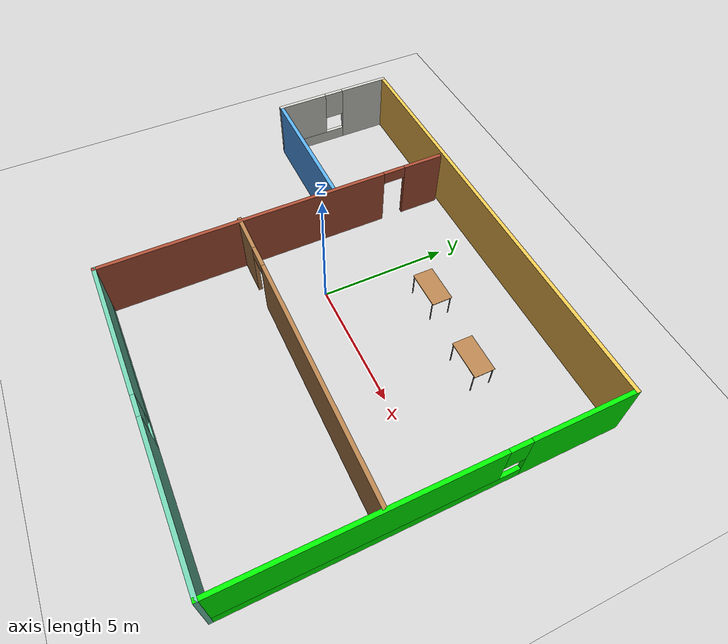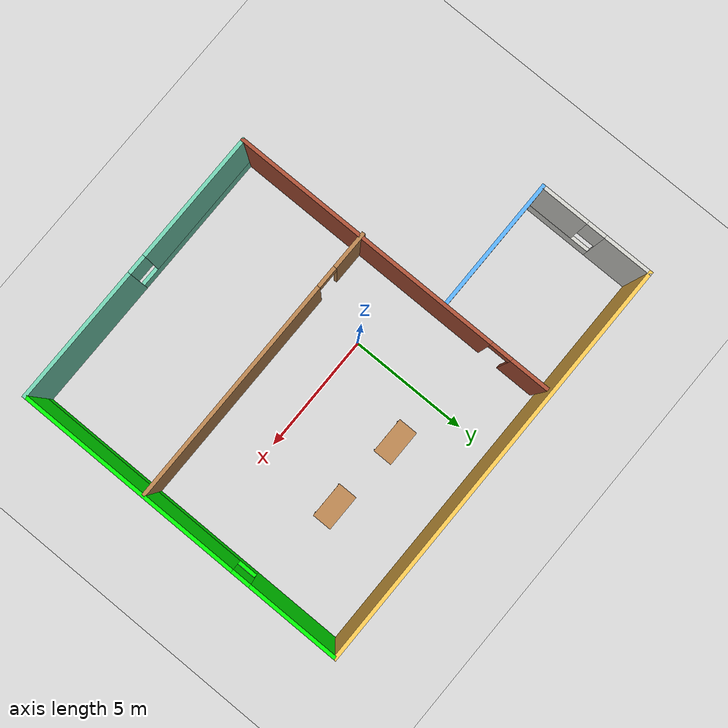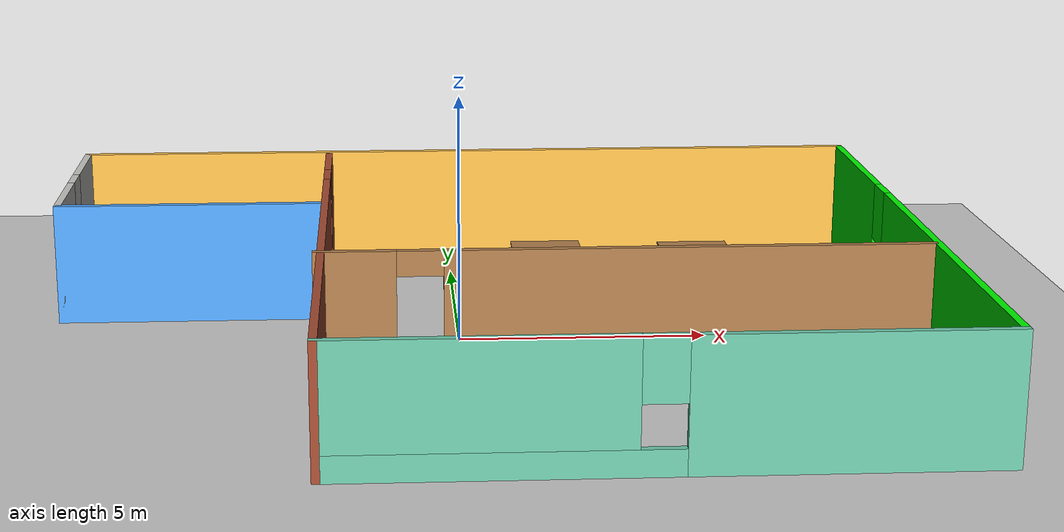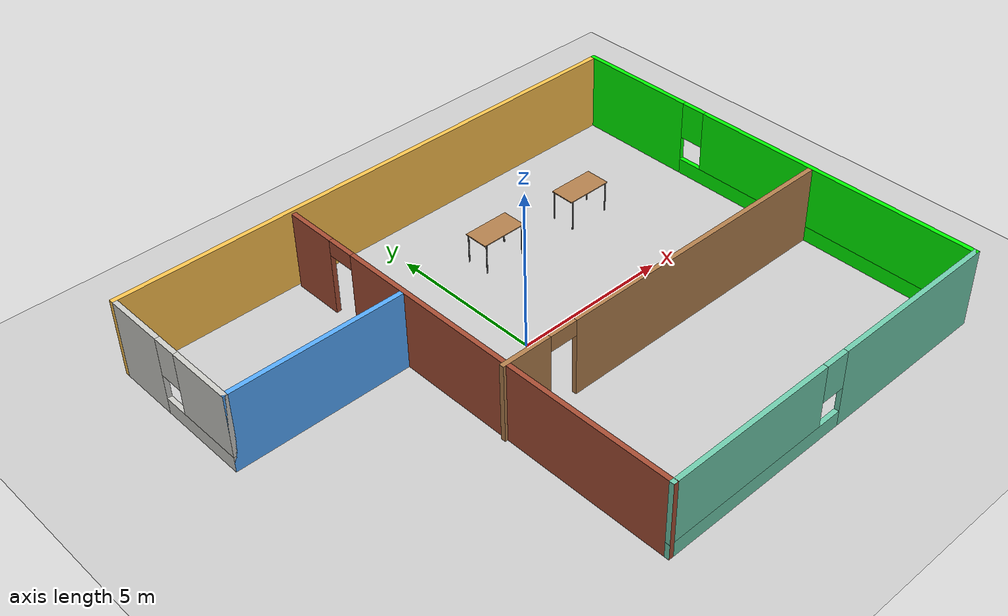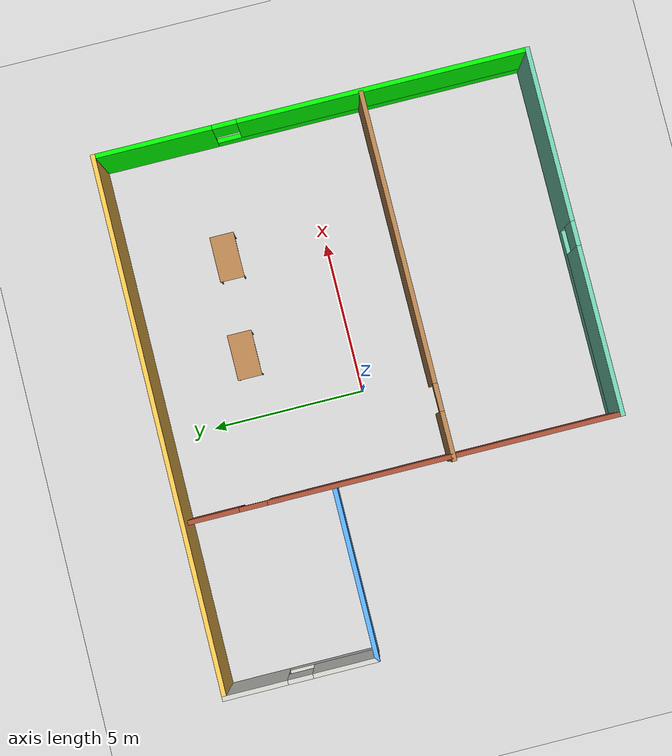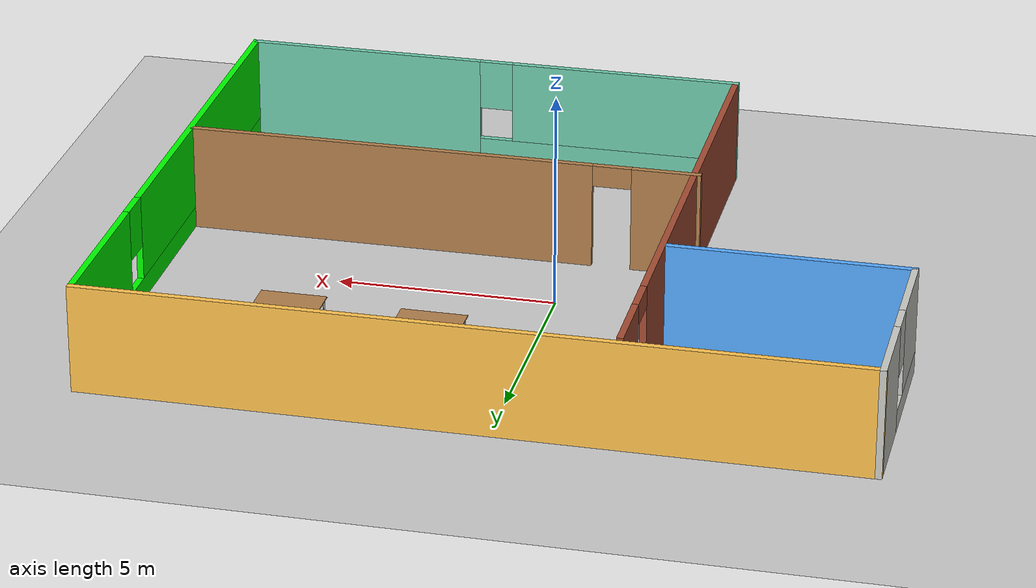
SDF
<sdf version="1.6">
 <world name="default">
  <light name="sun" type="directional">
   <pose>0 0 10 0 -0 0</pose>
   <diffuse>0.8 0.8 0.8 1</diffuse>
   <specular>0.2 0.2 0.2 1</specular>
   <attenuation>
    <range>1000</range>
    <constant>0.9</constant>
    <linear>0.01</linear>
    <quadratic>0.001</quadratic>
   </attenuation>
   <direction>-0.5 0.1 -0.9</direction>
  </light>
  <model name="ground_plane">
   <static>1</static>
   <link name="link">
    <collision name="collision">
     <geometry><plane><normal>0 0 1</normal><size>100 100</size></plane></geometry>
     <surface>
      <contact><collide_bitmask>65535</collide_bitmask></contact>
      <friction><ode><mu>100</mu><mu2>50</mu2></ode></friction>
     </surface>
    </collision>
    <visual name="visual">
     <cast_shadows>0</cast_shadows>
     <geometry><plane><normal>0 0 1</normal><size>100 100</size></plane></geometry>
     <material>
      <script><uri>file://media/materials/scripts/gazebo.material</uri><name>Gazebo/Grey</name></script>
     </material>
    </visual>
   </link>
  </model>
  <gravity>0 0 -9.8</gravity>
  <magnetic_field>6e-06 2.3e-05 -4.2e-05</magnetic_field>
  <atmosphere type="adiabatic"/>
  <physics name="default_physics" default="0" type="ode">
   <max_step_size>0.001</max_step_size>
   <real_time_factor>1</real_time_factor>
   <real_time_update_rate>1000</real_time_update_rate>
  </physics>
  <scene><ambient>0.4 0.4 0.4 1</ambient><background>0.7 0.7 0.7 1</background><shadows>1</shadows></scene>
  <spherical_coordinates>
   <surface_model>EARTH_WGS84</surface_model>
   <latitude_deg>0</latitude_deg>
   <longitude_deg>0</longitude_deg>
   <elevation>0</elevation>
   <heading_deg>0</heading_deg>
  </spherical_coordinates>
  <model name="new_world">
   <pose>0.452312 -0.573113 0 0 -0 0</pose>
   <link name="Wall_13">
    <pose>-3.175 -0.125 0 0 -0 1.5708</pose>
    <visual name="Wall_13_Visual_0">
     <pose>-1.27254 0 1.25 0 -0 0</pose>
     <geometry><box><size>11.4549 0.15 2.5</size></box></geometry>
     <material>
      <script><uri>file://media/materials/scripts/gazebo.material</uri><name>Gazebo/Bricks</name></script>
      <ambient>1 1 1 1</ambient>
     </material>
     <meta><layer>0</layer></meta>
    </visual>
    <collision name="Wall_13_Collision_0">
     <geometry><box><size>11.4549 0.15 2.5</size></box></geometry>
     <pose>-1.27254 0 1.25 0 -0 0</pose>
    </collision>
    <visual name="Wall_13_Visual_1">
     <pose>6.17746 0 1.25 0 -0 0</pose>
     <geometry><box><size>1.64508 0.15 2.5</size></box></geometry>
     <material>
      <script><uri>file://media/materials/scripts/gazebo.material</uri><name>Gazebo/Bricks</name></script>
      <ambient>1 1 1 1</ambient>
     </material>
     <meta><layer>0</layer></meta>
    </visual>
    <collision name="Wall_13_Collision_1">
     <geometry><box><size>1.64508 0.15 2.5</size></box></geometry>
     <pose>6.17746 0 1.25 0 -0 0</pose>
    </collision>
    <visual name="Wall_13_Visual_2">
     <pose>4.90492 0 2.25 0 -0 0</pose>
     <geometry><box><size>0.9 0.15 0.5</size></box></geometry>
     <material>
      <script><uri>file://media/materials/scripts/gazebo.material</uri><name>Gazebo/Bricks</name></script>
      <ambient>1 1 1 1</ambient>
     </material>
     <meta><layer>0</layer></meta>
    </visual>
    <collision name="Wall_13_Collision_2">
     <geometry><box><size>0.9 0.15 0.5</size></box></geometry>
     <pose>4.90492 0 2.25 0 -0 0</pose>
    </collision>
   </link>
   <link name="Wall_15">
    <pose>-8.675 4.625 0 0 0 -1.5708</pose>
    <visual name="Wall_15_Visual_0">
     <pose>-1.4571 0 1.25 0 -0 0</pose>
     <geometry><box><size>2.0858 0.15 2.5</size></box></geometry>
     <material>
      <script><uri>file://media/materials/scripts/gazebo.material</uri><name>Gazebo/CeilingTiled</name></script>
      <ambient>1 1 1 1</ambient>
     </material>
     <meta><layer>0</layer></meta>
    </visual>
    <collision name="Wall_15_Collision_0">
     <geometry><box><size>2.0858 0.15 2.5</size></box></geometry>
     <pose>-1.4571 0 1.25 0 -0 0</pose>
    </collision>
    <visual name="Wall_15_Visual_1">
     <pose>1.0429 0 0.25 0 -0 0</pose>
     <geometry><box><size>2.9142 0.15 0.5</size></box></geometry>
     <material>
      <script><uri>file://media/materials/scripts/gazebo.material</uri><name>Gazebo/CeilingTiled</name></script>
      <ambient>1 1 1 1</ambient>
     </material>
     <meta><layer>0</layer></meta>
    </visual>
    <collision name="Wall_15_Collision_1">
     <geometry><box><size>2.9142 0.15 0.5</size></box></geometry>
     <pose>1.0429 0 0.25 0 -0 0</pose>
    </collision>
    <visual name="Wall_15_Visual_2">
     <pose>1.4429 0 1.5 0 -0 0</pose>
     <geometry><box><size>2.1142 0.15 2</size></box></geometry>
     <material>
      <script><uri>file://media/materials/scripts/gazebo.material</uri><name>Gazebo/CeilingTiled</name></script>
      <ambient>1 1 1 1</ambient>
     </material>
     <meta><layer>0</layer></meta>
    </visual>
    <collision name="Wall_15_Collision_2">
     <geometry><box><size>2.1142 0.15 2</size></box></geometry>
     <pose>1.4429 0 1.5 0 -0 0</pose>
    </collision>
    <visual name="Wall_15_Visual_3">
     <pose>-0.014202 0 1.9 0 -0 0</pose>
     <geometry><box><size>0.8 0.15 1.2</size></box></geometry>
     <material>
      <script><uri>file://media/materials/scripts/gazebo.material</uri><name>Gazebo/CeilingTiled</name></script>
      <ambient>1 1 1 1</ambient>
     </material>
     <meta><layer>0</layer></meta>
    </visual>
    <collision name="Wall_15_Collision_3">
     <geometry><box><size>0.8 0.15 1.2</size></box></geometry>
     <pose>-0.014202 0 1.9 0 -0 0</pose>
    </collision>
   </link>
   <link name="Wall_16">
    <collision name="Wall_16_Collision">
     <geometry><box><size>5.5 0.15 2.5</size></box></geometry>
     <pose>0 0 1.25 0 -0 0</pose>
    </collision>
    <visual name="Wall_16_Visual">
     <pose>0 0 1.25 0 -0 0</pose>
     <geometry><box><size>5.5 0.15 2.5</size></box></geometry>
     <material>
      <script><uri>file://media/materials/scripts/gazebo.material</uri><name>Gazebo/Grey</name></script>
      <ambient>0.333333 0.666667 1 1</ambient>
     </material>
     <meta><layer>0</layer></meta>
    </visual>
    <pose>-6 2.2 0 0 -0 0</pose>
   </link>
   <link name="Wall_18">
    <pose>2.66378 -1.62262 0 0 -0 0</pose>
    <visual name="Wall_18_Visual_0">
     <pose>-5.20249 0 1.25 0 -0 0</pose>
     <geometry><box><size>1.59501 0.15 2.5</size></box></geometry>
     <material>
      <script><uri>file://media/materials/scripts/gazebo.material</uri><name>Gazebo/Wood</name></script>
      <ambient>1 1 1 1</ambient>
     </material>
     <meta><layer>0</layer></meta>
    </visual>
    <collision name="Wall_18_Collision_0">
     <geometry><box><size>1.59501 0.15 2.5</size></box></geometry>
     <pose>-5.20249 0 1.25 0 -0 0</pose>
    </collision>
    <visual name="Wall_18_Visual_1">
     <pose>1.24751 0 1.25 0 -0 0</pose>
     <geometry><box><size>9.50499 0.15 2.5</size></box></geometry>
     <material>
      <script><uri>file://media/materials/scripts/gazebo.material</uri><name>Gazebo/Wood</name></script>
      <ambient>1 1 1 1</ambient>
     </material>
     <meta><layer>0</layer></meta>
    </visual>
    <collision name="Wall_18_Collision_1">
     <geometry><box><size>9.50499 0.15 2.5</size></box></geometry>
     <pose>1.24751 0 1.25 0 -0 0</pose>
    </collision>
    <visual name="Wall_18_Visual_2">
     <pose>-3.95499 0 2.25 0 -0 0</pose>
     <geometry><box><size>0.9 0.15 0.5</size></box></geometry>
     <material>
      <script><uri>file://media/materials/scripts/gazebo.material</uri><name>Gazebo/Wood</name></script>
      <ambient>1 1 1 1</ambient>
     </material>
     <meta><layer>0</layer></meta>
    </visual>
    <collision name="Wall_18_Collision_2">
     <geometry><box><size>0.9 0.15 0.5</size></box></geometry>
     <pose>-3.95499 0 2.25 0 -0 0</pose>
    </collision>
   </link>
   <link name="Wall_3">
    <collision name="Wall_3_Collision">
     <geometry><box><size>17.5 0.15 2.5</size></box></geometry>
     <pose>0 0 1.25 0 -0 0</pose>
    </collision>
    <visual name="Wall_3_Visual">
     <pose>0 0 1.25 0 -0 0</pose>
     <geometry><box><size>17.5 0.15 2.5</size></box></geometry>
     <material>
      <script><uri>file://media/materials/scripts/gazebo.material</uri><name>Gazebo/Grey</name></script>
      <ambient>1 0.764706 0.305882 1</ambient>
     </material>
     <meta><layer>0</layer></meta>
    </visual>
    <pose>0 7.05 0 0 -0 0</pose>
   </link>
   <link name="Wall_4">
    <pose>8.675 0 0 0 0 -1.5708</pose>
    <visual name="Wall_4_Visual_0">
     <pose>-5.16745 0 1.25 0 -0 0</pose>
     <geometry><box><size>3.91509 0.15 2.5</size></box></geometry>
     <material>
      <script><uri>file://media/materials/scripts/gazebo.material</uri><name>Gazebo/Grey</name></script>
      <ambient>0 1 0 1</ambient>
     </material>
     <meta><layer>0</layer></meta>
    </visual>
    <collision name="Wall_4_Collision_0">
     <geometry><box><size>3.91509 0.15 2.5</size></box></geometry>
     <pose>-5.16745 0 1.25 0 -0 0</pose>
    </collision>
    <visual name="Wall_4_Visual_1">
     <pose>1.95755 0 0.25 0 -0 0</pose>
     <geometry><box><size>10.3349 0.15 0.5</size></box></geometry>
     <material>
      <script><uri>file://media/materials/scripts/gazebo.material</uri><name>Gazebo/Grey</name></script>
      <ambient>0 1 0 1</ambient>
     </material>
     <meta><layer>0</layer></meta>
    </visual>
    <collision name="Wall_4_Collision_1">
     <geometry><box><size>10.3349 0.15 0.5</size></box></geometry>
     <pose>1.95755 0 0.25 0 -0 0</pose>
    </collision>
    <visual name="Wall_4_Visual_2">
     <pose>2.35755 0 1.5 0 -0 0</pose>
     <geometry><box><size>9.53491 0.15 2</size></box></geometry>
     <material>
      <script><uri>file://media/materials/scripts/gazebo.material</uri><name>Gazebo/Grey</name></script>
      <ambient>0 1 0 1</ambient>
     </material>
     <meta><layer>0</layer></meta>
    </visual>
    <collision name="Wall_4_Collision_2">
     <geometry><box><size>9.53491 0.15 2</size></box></geometry>
     <pose>2.35755 0 1.5 0 -0 0</pose>
    </collision>
    <visual name="Wall_4_Visual_3">
     <pose>-2.80991 0 1.9 0 -0 0</pose>
     <geometry><box><size>0.8 0.15 1.2</size></box></geometry>
     <material>
      <script><uri>file://media/materials/scripts/gazebo.material</uri><name>Gazebo/Grey</name></script>
      <ambient>0 1 0 1</ambient>
     </material>
     <meta><layer>0</layer></meta>
    </visual>
    <collision name="Wall_4_Collision_3">
     <geometry><box><size>0.8 0.15 1.2</size></box></geometry>
     <pose>-2.80991 0 1.9 0 -0 0</pose>
    </collision>
   </link>
   <link name="Wall_5">
    <pose>2.75 -7.05 0 0 -0 3.14159</pose>
    <visual name="Wall_5_Visual_0">
     <pose>-3.14941 0 1.25 0 -0 0</pose>
     <geometry><box><size>5.70118 0.15 2.5</size></box></geometry>
     <material>
      <script><uri>file://media/materials/scripts/gazebo.material</uri><name>Gazebo/Grey</name></script>
      <ambient>0.435294 0.796078 0.67451 1</ambient>
     </material>
     <meta><layer>0</layer></meta>
    </visual>
    <collision name="Wall_5_Collision_0">
     <geometry><box><size>5.70118 0.15 2.5</size></box></geometry>
     <pose>-3.14941 0 1.25 0 -0 0</pose>
    </collision>
    <visual name="Wall_5_Visual_1">
     <pose>2.85059 0 0.25 0 -0 0</pose>
     <geometry><box><size>6.29882 0.15 0.5</size></box></geometry>
     <material>
      <script><uri>file://media/materials/scripts/gazebo.material</uri><name>Gazebo/Grey</name></script>
      <ambient>0.435294 0.796078 0.67451 1</ambient>
     </material>
     <meta><layer>0</layer></meta>
    </visual>
    <collision name="Wall_5_Collision_1">
     <geometry><box><size>6.29882 0.15 0.5</size></box></geometry>
     <pose>2.85059 0 0.25 0 -0 0</pose>
    </collision>
    <visual name="Wall_5_Visual_2">
     <pose>3.25059 0 1.5 0 -0 0</pose>
     <geometry><box><size>5.49882 0.15 2</size></box></geometry>
     <material>
      <script><uri>file://media/materials/scripts/gazebo.material</uri><name>Gazebo/Grey</name></script>
      <ambient>0.435294 0.796078 0.67451 1</ambient>
     </material>
     <meta><layer>0</layer></meta>
    </visual>
    <collision name="Wall_5_Collision_2">
     <geometry><box><size>5.49882 0.15 2</size></box></geometry>
     <pose>3.25059 0 1.5 0 -0 0</pose>
    </collision>
    <visual name="Wall_5_Visual_3">
     <pose>0.101184 0 1.9 0 -0 0</pose>
     <geometry><box><size>0.8 0.15 1.2</size></box></geometry>
     <material>
      <script><uri>file://media/materials/scripts/gazebo.material</uri><name>Gazebo/Grey</name></script>
      <ambient>0.435294 0.796078 0.67451 1</ambient>
     </material>
     <meta><layer>0</layer></meta>
    </visual>
    <collision name="Wall_5_Collision_3">
     <geometry><box><size>0.8 0.15 1.2</size></box></geometry>
     <pose>0.101184 0 1.9 0 -0 0</pose>
    </collision>
   </link>
   <static>1</static>
  </model>
  <model name="table">
   <static>1</static>
   <link name="link">
    <collision name="surface">
     <pose>0 0 1 0 -0 0</pose>
     <geometry><box><size>1.5 0.8 0.03</size></box></geometry>
     <surface><friction><ode><mu>0.6</mu><mu2>0.6</mu2></ode></friction></surface>
    </collision>
    <visual name="visual1">
     <pose>0 0 1 0 -0 0</pose>
     <geometry><box><size>1.5 0.8 0.03</size></box></geometry>
     <material>
      <script><uri>file://media/materials/scripts/gazebo.material</uri><name>Gazebo/Wood</name></script>
     </material>
    </visual>
    <collision name="front_left_leg">
     <pose>0.68 0.38 0.5 0 -0 0</pose>
     <geometry><cylinder><radius>0.02</radius><length>1</length></cylinder></geometry>
    </collision>
    <visual name="front_left_leg">
     <pose>0.68 0.38 0.5 0 -0 0</pose>
     <geometry><cylinder><radius>0.02</radius><length>1</length></cylinder></geometry>
     <material>
      <script><uri>file://media/materials/scripts/gazebo.material</uri><name>Gazebo/Grey</name></script>
     </material>
    </visual>
    <collision name="front_right_leg">
     <pose>0.68 -0.38 0.5 0 -0 0</pose>
     <geometry><cylinder><radius>0.02</radius><length>1</length></cylinder></geometry>
    </collision>
    <visual name="front_right_leg">
     <pose>0.68 -0.38 0.5 0 -0 0</pose>
     <geometry><cylinder><radius>0.02</radius><length>1</length></cylinder></geometry>
     <material>
      <script><uri>file://media/materials/scripts/gazebo.material</uri><name>Gazebo/Grey</name></script>
     </material>
    </visual>
    <collision name="back_right_leg">
     <pose>-0.68 -0.38 0.5 0 -0 0</pose>
     <geometry><cylinder><radius>0.02</radius><length>1</length></cylinder></geometry>
    </collision>
    <visual name="back_right_leg">
     <pose>-0.68 -0.38 0.5 0 -0 0</pose>
     <geometry><cylinder><radius>0.02</radius><length>1</length></cylinder></geometry>
     <material>
      <script><uri>file://media/materials/scripts/gazebo.material</uri><name>Gazebo/Grey</name></script>
     </material>
    </visual>
    <collision name="back_left_leg">
     <pose>-0.68 0.38 0.5 0 -0 0</pose>
     <geometry><cylinder><radius>0.02</radius><length>1</length></cylinder></geometry>
    </collision>
    <visual name="back_left_leg">
     <pose>-0.68 0.38 0.5 0 -0 0</pose>
     <geometry><cylinder><radius>0.02</radius><length>1</length></cylinder></geometry>
     <material>
      <script><uri>file://media/materials/scripts/gazebo.material</uri><name>Gazebo/Grey</name></script>
     </material>
    </visual>
   </link>
   <pose>2.03215 3.43302 0 0 -0 0</pose>
  </model>
  <model name="table_clone">
   <static>1</static>
   <link name="link">
    <collision name="surface">
     <pose>0 0 1 0 -0 0</pose>
     <geometry><box><size>1.5 0.8 0.03</size></box></geometry>
     <surface><friction><ode><mu>0.6</mu><mu2>0.6</mu2></ode></friction></surface>
    </collision>
    <visual name="visual1">
     <pose>0 0 1 0 -0 0</pose>
     <geometry><box><size>1.5 0.8 0.03</size></box></geometry>
     <material>
      <script><uri>file://media/materials/scripts/gazebo.material</uri><name>Gazebo/Wood</name></script>
     </material>
    </visual>
    <collision name="front_left_leg">
     <pose>0.68 0.38 0.5 0 -0 0</pose>
     <geometry><cylinder><radius>0.02</radius><length>1</length></cylinder></geometry>
    </collision>
    <visual name="front_left_leg">
     <pose>0.68 0.38 0.5 0 -0 0</pose>
     <geometry><cylinder><radius>0.02</radius><length>1</length></cylinder></geometry>
     <material>
      <script><uri>file://media/materials/scripts/gazebo.material</uri><name>Gazebo/Grey</name></script>
     </material>
    </visual>
    <collision name="front_right_leg">
     <pose>0.68 -0.38 0.5 0 -0 0</pose>
     <geometry><cylinder><radius>0.02</radius><length>1</length></cylinder></geometry>
    </collision>
    <visual name="front_right_leg">
     <pose>0.68 -0.38 0.5 0 -0 0</pose>
     <geometry><cylinder><radius>0.02</radius><length>1</length></cylinder></geometry>
     <material>
      <script><uri>file://media/materials/scripts/gazebo.material</uri><name>Gazebo/Grey</name></script>
     </material>
    </visual>
    <collision name="back_right_leg">
     <pose>-0.68 -0.38 0.5 0 -0 0</pose>
     <geometry><cylinder><radius>0.02</radius><length>1</length></cylinder></geometry>
    </collision>
    <visual name="back_right_leg">
     <pose>-0.68 -0.38 0.5 0 -0 0</pose>
     <geometry><cylinder><radius>0.02</radius><length>1</length></cylinder></geometry>
     <material>
      <script><uri>file://media/materials/scripts/gazebo.material</uri><name>Gazebo/Grey</name></script>
     </material>
    </visual>
    <collision name="back_left_leg">
     <pose>-0.68 0.38 0.5 0 -0 0</pose>
     <geometry><cylinder><radius>0.02</radius><length>1</length></cylinder></geometry>
    </collision>
    <visual name="back_left_leg">
     <pose>-0.68 0.38 0.5 0 -0 0</pose>
     <geometry><cylinder><radius>0.02</radius><length>1</length></cylinder></geometry>
     <material>
      <script><uri>file://media/materials/scripts/gazebo.material</uri><name>Gazebo/Grey</name></script>
     </material>
    </visual>
   </link>
   <pose>5.25696 3.22669 0 0 -0 0</pose>
  </model>
 </world>
</sdf>
